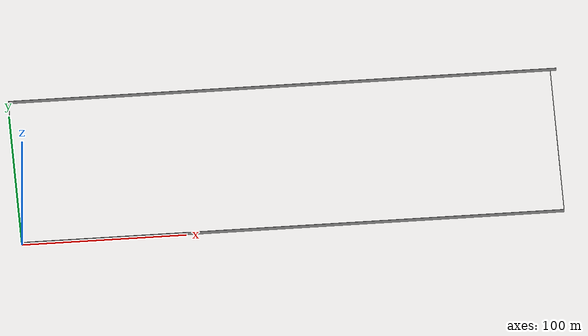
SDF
<?xml version='1.0'?>
<sdf version='1.6'>
  <model name='imav'>
    <pose frame=''>-480138 306352 0 0 -0 0</pose>
    <link name='Wall_0'>
      <collision name='Wall_0_Collision'>
        <geometry>
          <box>
            <size>344100 0.15 2.5</size>
          </box>
        </geometry>
        <pose frame=''>0 0 1.25 0 -0 0</pose>
      </collision>
      <visual name='Wall_0_Visual'>
        <pose frame=''>0 0 1.25 0 -0 0</pose>
        <geometry>
          <box>
            <size>344100 0.15 2.5</size>
          </box>
        </geometry>
        <material>
          <script>
            <uri>file://media/materials/scripts/gazebo.material</uri>
            <name>Gazebo/Grey</name>
          </script>
          <ambient>1 1 1 1</ambient>
        </material>
      </visual>
      <pose frame=''>-480471 157226 0 0 0 -1.5708</pose>
    </link>
    <link name='Wall_1'>
      <collision name='Wall_1_Collision'>
        <geometry>
          <box>
            <size>0.15 0.15 2.5</size>
          </box>
        </geometry>
        <pose frame=''>0 0 1.25 0 -0 0</pose>
      </collision>
      <visual name='Wall_1_Visual'>
        <pose frame=''>0 0 1.25 0 -0 0</pose>
        <geometry>
          <box>
            <size>0.15 0.15 2.5</size>
          </box>
        </geometry>
        <material>
          <script>
            <uri>file://media/materials/scripts/gazebo.material</uri>
            <name>Gazebo/Grey</name>
          </script>
          <ambient>1 1 1 1</ambient>
        </material>
      </visual>
      <pose frame=''>-480471 -14824.1 0 0 -0 0</pose>
    </link>
    <link name='Wall_16'>
      <collision name='Wall_16_Collision'>
        <geometry>
          <box>
            <size>333.25 0.15 2.5</size>
          </box>
        </geometry>
        <pose frame=''>0 0 1.25 0 -0 0</pose>
      </collision>
      <visual name='Wall_16_Visual'>
        <pose frame=''>0 0 1.25 0 -0 0</pose>
        <geometry>
          <box>
            <size>333.25 0.15 2.5</size>
          </box>
        </geometry>
        <material>
          <script>
            <uri>file://media/materials/scripts/gazebo.material</uri>
            <name>Gazebo/Grey</name>
          </script>
          <ambient>1 1 1 1</ambient>
        </material>
      </visual>
      <pose frame=''>480305 -306242 0 0 -0 0</pose>
    </link>
    <link name='Wall_18'>
      <collision name='Wall_18_Collision'>
        <geometry>
          <box>
            <size>110.15 0.15 2.5</size>
          </box>
        </geometry>
        <pose frame=''>0 0 1.25 0 -0 0</pose>
      </collision>
      <visual name='Wall_18_Visual'>
        <pose frame=''>0 0 1.25 0 -0 0</pose>
        <geometry>
          <box>
            <size>110.15 0.15 2.5</size>
          </box>
        </geometry>
        <material>
          <script>
            <uri>file://media/materials/scripts/gazebo.material</uri>
            <name>Gazebo/Grey</name>
          </script>
          <ambient>1 1 1 1</ambient>
        </material>
      </visual>
      <pose frame=''>480468 -306297 0 0 0 -1.5708</pose>
    </link>
    <link name='Wall_2'>
      <collision name='Wall_2_Collision'>
        <geometry>
          <box>
            <size>342136 0.15 2.5</size>
          </box>
        </geometry>
        <pose frame=''>0 0 1.25 0 -0 0</pose>
      </collision>
      <visual name='Wall_2_Visual'>
        <pose frame=''>0 0 1.25 0 -0 0</pose>
        <geometry>
          <box>
            <size>342136 0.15 2.5</size>
          </box>
        </geometry>
        <material>
          <script>
            <uri>file://media/materials/scripts/gazebo.material</uri>
            <name>Gazebo/Grey</name>
          </script>
          <ambient>1 1 1 1</ambient>
        </material>
      </visual>
      <pose frame=''>-394937 -162973 0 0 0 -1.0472</pose>
    </link>
    <link name='Wall_3'>
      <collision name='Wall_3_Collision'>
        <geometry>
          <box>
            <size>20961.2 0.15 2.5</size>
          </box>
        </geometry>
        <pose frame=''>0 0 1.25 0 -0 0</pose>
      </collision>
      <visual name='Wall_3_Visual'>
        <pose frame=''>0 0 1.25 0 -0 0</pose>
        <geometry>
          <box>
            <size>20961.2 0.15 2.5</size>
          </box>
        </geometry>
        <material>
          <script>
            <uri>file://media/materials/scripts/gazebo.material</uri>
            <name>Gazebo/Grey</name>
          </script>
          <ambient>1 1 1 1</ambient>
        </material>
      </visual>
      <pose frame=''>-314643 -320199 0 0 0 -2.0944</pose>
    </link>
    <link name='Wall_5'>
      <collision name='Wall_5_Collision'>
        <geometry>
          <box>
            <size>330.161 0.15 2.5</size>
          </box>
        </geometry>
        <pose frame=''>0 0 1.25 0 -0 0</pose>
      </collision>
      <visual name='Wall_5_Visual'>
        <pose frame=''>0 0 1.25 0 -0 0</pose>
        <geometry>
          <box>
            <size>330.161 0.15 2.5</size>
          </box>
        </geometry>
        <material>
          <script>
            <uri>file://media/materials/scripts/gazebo.material</uri>
            <name>Gazebo/Grey</name>
          </script>
          <ambient>1 1 1 1</ambient>
        </material>
      </visual>
      <pose frame=''>480303 -306352 0 0 -0 0</pose>
    </link>
    <link name='Wall_7'>
      <collision name='Wall_7_Collision'>
        <geometry>
          <box>
            <size>110.15 0.15 2.5</size>
          </box>
        </geometry>
        <pose frame=''>0 0 1.25 0 -0 0</pose>
      </collision>
      <visual name='Wall_7_Visual'>
        <pose frame=''>0 0 1.25 0 -0 0</pose>
        <geometry>
          <box>
            <size>110.15 0.15 2.5</size>
          </box>
        </geometry>
        <material>
          <script>
            <uri>file://media/materials/scripts/gazebo.material</uri>
            <name>Gazebo/Grey</name>
          </script>
          <ambient>1 1 1 1</ambient>
        </material>
      </visual>
      <pose frame=''>480138 -306297 0 0 -0 1.5707</pose>
    </link>
    <static>1</static>
  </model>
</sdf>
